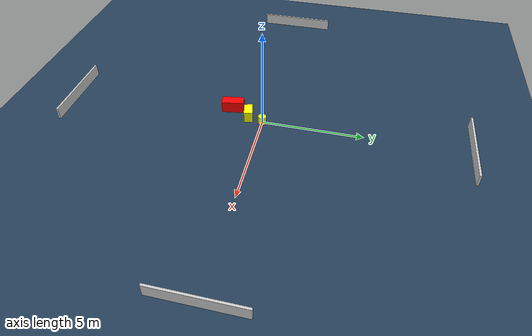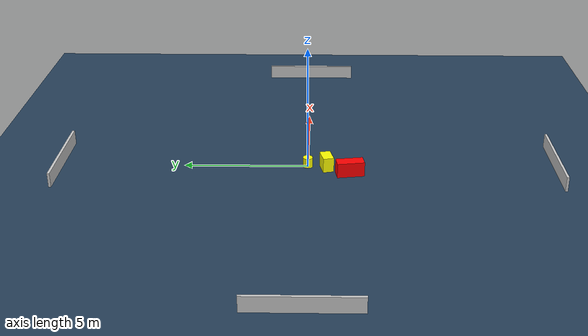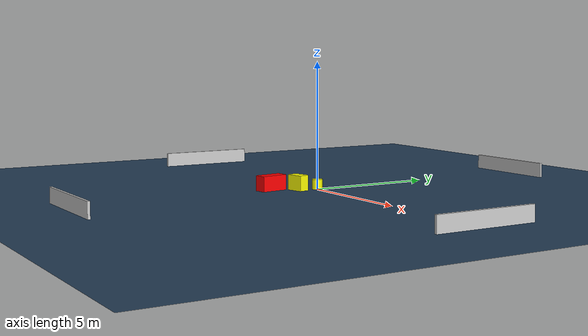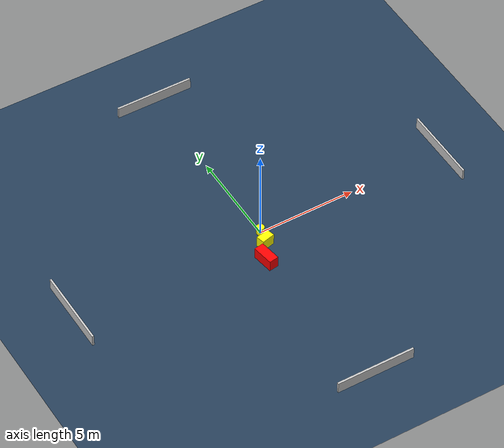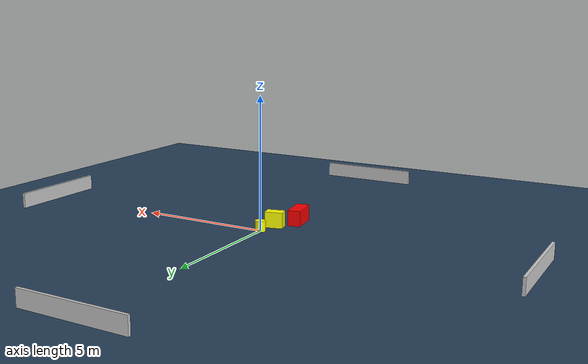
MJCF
<?xml version="1.0" ?>
<mujoco model="generated_environment">
  <option timestep="0.01" integrator="RK4" cone="elliptic"/>
  <default>
    <geom density="1"/>
  </default>
  <asset>
    <texture builtin="gradient" height="3072" name="skybox" rgb1="0.3 0.5 0.7" rgb2="0 0 0" type="skybox" width="512"/>
    <texture builtin="checker" height="300" name="groundplane" rgb1="0.2 0.3 0.4" rgb2="0.1 0.2 0.3" type="2d" width="300"/>
    <material name="groundplane" reflectance="0.2" texrepeat="5 5" texture="groundplane"/>
  </asset>
  <worldbody>
    <light dir="0 0 -1" directional="true" pos="0 0 1.5"/>
    <geom condim="3" friction="0.5 0.005 0.001" material="groundplane" name="floor" pos="0 0 0" size="0 0 0.05" type="plane"/>
    <body name="walls">
      <geom name="wall_1" condim="4" pos="-10.0 0.0 0.3" rgba="0.800000011920929 0.800000011920929 0.800000011920929 1.0" size="0.05 2.0 0.3" type="box"/>
      <geom name="wall_2" condim="4" pos="10.0 0.0 0.3" rgba="0.800000011920929 0.800000011920929 0.800000011920929 1.0" size="0.05 2.0 0.3" type="box"/>
      <geom name="wall_3" condim="4" pos="0.0 -10.0 0.3" rgba="0.800000011920929 0.800000011920929 0.800000011920929 1.0" size="2.0 0.05 0.3" type="box"/>
      <geom name="wall_4" condim="4" pos="0.0 10.0 0.3" rgba="0.800000011920929 0.800000011920929 0.800000011920929 1.0" size="2.0 0.05 0.3" type="box"/>
    </body>
    <body name="robot">
      <joint name="joint_x" type="slide" pos="0 0 0" axis="1 0 0"/>
      <joint name="joint_y" type="slide" pos="0 0 0" axis="0 1 0"/>
      <geom name="robot" type="cylinder" pos="0.0 0.0 0.2" size="0.2 0.2 0.0" mass="5.0" friction="1.0 0.005 0.0001" condim="4" rgba="1.0 1.0 0.0 1.0"/>
    </body>
    <body name="obstacle_1_movable">
      <geom name="obstacle_1_movable" condim="4" pos="-0.1917038221365455 -0.7579872666012771 0.3" euler="0 0 283.53591186564563" friction="0.0 0.005 0.001" rgba="1.0 1.0 0.0 1.0" size="0.21661329248003958 0.3412282663828202 0.3" type="box" mass="0.1"/>
      <joint type="free"/>
    </body>
    <body name="obstacle_2_static">
      <geom name="obstacle_2_static" condim="4" pos="-0.6967224531561513 -1.6878785089066848 0.3" euler="0 0 278.89738681262645" friction="0.0 0.005 0.001" rgba="1.0 0.0 0.0 1.0" size="0.5496716949053627 0.24812571480180576 0.3" type="box"/>
    </body>
  </worldbody>
  <actuator>
    <motor name="actuator_x" joint="joint_x" gear="1" ctrlrange="-1 1"/>
    <motor name="actuator_y" joint="joint_y" gear="1" ctrlrange="-1 1"/>
  </actuator>
</mujoco>
